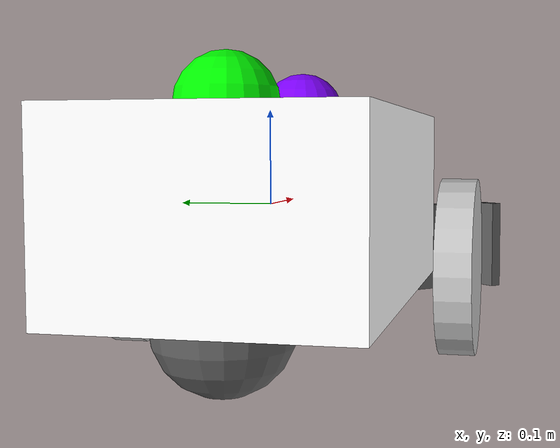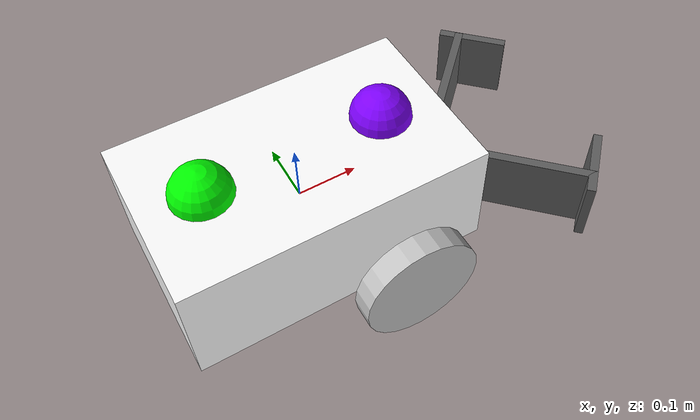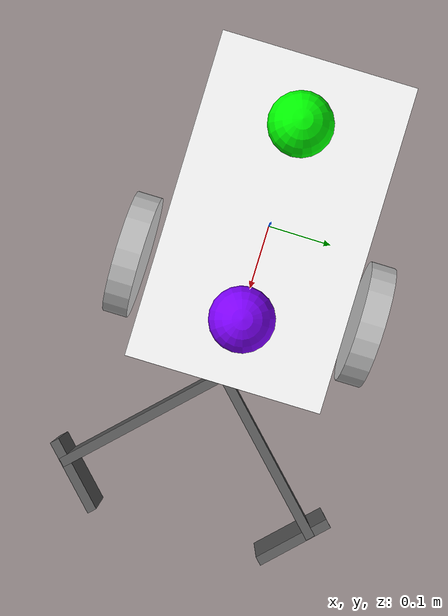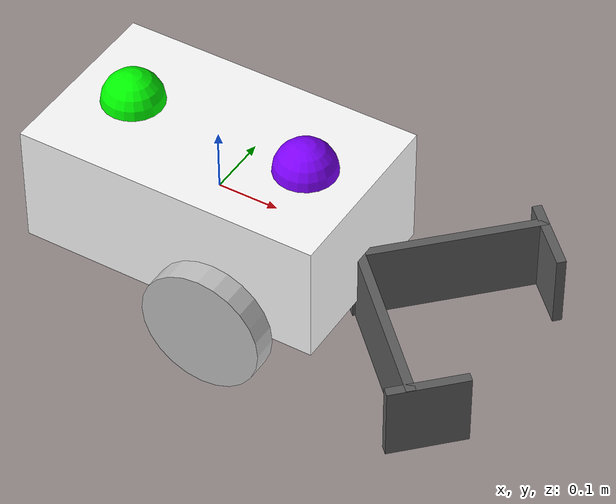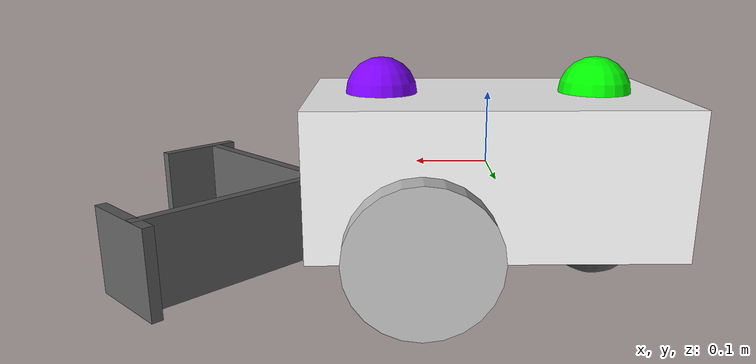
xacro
<?xml version="1.0" ?>
<robot xmlns:xacro="http://www.ros.org/wiki/xacro" name="carlos">

   <xacro:property name="body_x" value="0.5" />
   <xacro:property name="body_y" value="0.3" />
   <xacro:property name="body_z" value="0.2" />
   <xacro:property name="body_m" value="1.0" />

   <xacro:property name="wheel_len" value="0.04" />
   <xacro:property name="wheel_rad" value="0.1" />
   <xacro:property name="wheel_m" value="0.1" />

   <xacro:property name="wheel_front_rad" value="0.07" />
   <xacro:property name="wheel_front_m" value="0.2" />

   <xacro:property name="cam_rad" value="0.04" />
   <xacro:property name="cam_m" value="0.01" />

    <!-- Define intertial property macros  -->
   <xacro:macro name="box_inertia" params="m w h d">
     <inertia ixx="${(m/12) * (h*h + d*d)}" ixy="0.0" ixz="0.0"
              iyy="${(m/12) * (w*w + d*d)}" iyz="0.0" izz="${(m/12) *
(w*w + h*h)}" />
   </xacro:macro>

   <xacro:macro name="cylinder_inertia" params="m r h">
     <inertia ixx="${(m/12) * (3*r*r + h*h)}" ixy="0" ixz="0"
              iyy="${(m/12) * (3*r*r + h*h)}" iyz="0" izz="${(m/2) *
(r*r)}" />
   </xacro:macro>

   <xacro:macro name="sphere_inertia" params="m r">
     <inertia ixx="${(2/5) * m * (r*r)}" ixy="0.0" ixz="0.0"
              iyy="${(2/5) * m * (r*r)}" iyz="0.0" izz="${(2/5) * m *
(r*r)}" />
   </xacro:macro>

  <xacro:macro name="sphere_link" params="name r color mass:=0.1 inertia_ratio:=1.0 *origin">
    <link name="${name}">
        <collision>
            <xacro:insert_block name="origin"/>
            <geometry>
                <sphere radius="${r}"/>
            </geometry>
        </collision>
        <visual>
            <xacro:insert_block name="origin"/>
            <geometry>
                <sphere radius="${r}"/>
            </geometry>
            <material name="${color}"/>
        </visual>
        <inertial>
            <mass value="${mass}"/>
            <xacro:insert_block name="origin"/>
            <inertia ixx="${inertia_ratio*(2/3)*mass*r*r}" ixy="0.0" ixz="0.0"
                     iyy="${inertia_ratio*(2/3)*mass*r*r}" iyz="0.0"
                     izz="${inertia_ratio*(2/3)*mass*r*r}"/>
        </inertial>
    </link>
    <joint name="${name}_joint" type="fixed">
       <parent link="base_link"/>
       <child link="${name}"/>
       <xacro:insert_block name="origin"/>
    </joint>
  </xacro:macro>

  <xacro:macro name="gripper_link" params="name l thickness h color mass:=0.1 inertia_ratio:=1.0 *origin">
    <link name="${name}">
        <collision>
            <xacro:insert_block name="origin"/>
            <geometry>
              <box size="${l} ${thickness} ${h}"/>
            </geometry>
        </collision>
        <visual>
            <xacro:insert_block name="origin"/>
            <geometry>
              <box size="${l} ${thickness} ${h}"/>
            </geometry>
            <material name="${color}"/>
        </visual>
        <inertial>
            <mass value="${mass}"/>
            <xacro:insert_block name="origin"/>
            <inertia ixx="${mass/12} * (${l}*${l})" ixy="0.0" ixz="0.0" iyy="${mass/12} * (${thickness}*${thickness})" iyz="0.0" izz="${mass/12}*(${thickness}*${thickness} + ${h}*${h})" />
        </inertial>
    </link>
    <joint name="${name}_joint" type="fixed">
       <parent link="base_link"/>
       <child link="${name}"/>
       <xacro:insert_block name="origin"/>
    </joint>
    <gazebo reference="wheel_front">
     <material>Gazebo/DarkGray</material>
    </gazebo>
  </xacro:macro>

  <material name="blue">
   <color rgba="0 0 0.8 1"/>
  </material>

  <material name="red">
   <color rgba="0.8 0 0 1"/>
  </material>

  <material name="grey">
   <color rgba="0.36 0.36 0.36 1"/>
  </material>

  <material name="lightgrey">
   <color rgba="0.76 0.76 0.76 1"/>
  </material>

  <material name="white">
   <color rgba="1 1 1 1"/>
  </material>

  <material name="violet">
   <color rgba="${127/255} ${0/255} 1 1"/>
  </material>

  <material name="green">
   <color rgba="0 1 0 1"/>
  </material>

  <link name="base_link">
   <visual>
     <geometry>
       <box size="${body_x} ${body_y} ${body_z}"/>
     </geometry>
     <material name="white"/>
   </visual>

   <collision>
     <geometry>
       <box size="${body_x} ${body_y} ${body_z}"/>
     </geometry>
   </collision>

   <inertial>
     <origin rpy="0 0 0" xyz="0 0 0.0"/>
     <mass value="${body_m}"/>
     <xacro:box_inertia m="${body_m}" w="${body_y}" h="${body_z}"
  d="${body_x}"/>
   </inertial>
  </link>

  <gazebo reference="base_link">
   <material>Gazebo/White</material>
  </gazebo>

  <link name="wheel_right">
   <visual>
     <geometry>
       <cylinder length="${wheel_len}" radius="${wheel_rad}"/>
     </geometry>
     <material name="lightgrey"/>
   </visual>

   <collision>
     <geometry>
       <cylinder length="${wheel_len}" radius="${wheel_rad}"/>
     </geometry>
   </collision>

   <inertial>
     <mass value="${wheel_m}"/>
     <xacro:cylinder_inertia m="${wheel_m}" r="${wheel_rad}"
  h="${wheel_len}"/>
   </inertial>
  </link>

  <gazebo reference="wheel_right">
   <mu1>1.2</mu1>
   <mu2>1.2</mu2>
   <kp>500000.0</kp>
   <kd>10.0</kd>
   <minDepth>0.001</minDepth>
   <maxVel>0.1</maxVel>
   <material>Gazebo/FlatBlack</material>
  </gazebo>

  <joint name="wheel_right_joint" type="continuous">
   <parent link="base_link"/>
   <child link="wheel_right"/>
   <axis xyz="0 0 1"/>
   <origin rpy="${-pi/2} 0 0" xyz="${body_x*0.2} ${-body_y*0.65}
  ${-body_y*0.25}"/>
  </joint>

  <link name="wheel_left">
   <visual>
     <geometry>
       <cylinder length="${wheel_len}" radius="${wheel_rad}"/>
     </geometry>
     <material name="lightgrey"/>
   </visual>

   <collision>
     <geometry>
       <cylinder length="${wheel_len}" radius="${wheel_rad}"/>
     </geometry>
   </collision>

   <inertial>
     <mass value="${wheel_m}"/>
     <xacro:cylinder_inertia m="${wheel_m}" r="${wheel_rad}"
  h="${wheel_len}"/>
   </inertial>
  </link>

  <gazebo reference="wheel_left">
   <mu1>1.2</mu1>
   <mu2>1.2</mu2>
   <kp>500000.0</kp>
   <kd>10.0</kd>
   <minDepth>0.001</minDepth>
   <maxVel>0.1</maxVel>
   <material>Gazebo/FlatBlack</material>
  </gazebo>

  <joint name="wheel_left_joint" type="continuous">
   <parent link="base_link"/>
   <child link="wheel_left"/>
   <axis xyz="0 0 1"/>
   <origin rpy="${-pi/2} 0 0" xyz="${body_x*0.2} ${body_y*0.65}
  ${-body_y*0.25}"/>
  </joint>

  <link name="wheel_front">
   <visual>
     <geometry>
       <sphere radius="${wheel_front_rad}"/>
     </geometry>
     <material name="grey"/>
   </visual>
   <collision>
     <geometry>
       <sphere radius="${wheel_front_rad}"/>
     </geometry>
   </collision>
  </link>
  <joint name="wheel_front_joint" type="fixed">
   <parent link="base_link"/>
   <child link="wheel_front"/>
   <origin rpy="0 0 0" xyz="${-body_x*0.325} 0.0 ${-body_z*0.5}"/>
  </joint>

  <gazebo reference="wheel_front">
   <material>Gazebo/DarkGray</material>
   <mu1>0.2</mu1>
   <mu2>0.2</mu2>
  </gazebo>

  <!-- ______________ wheel motion plugin _______________  -->
  <gazebo>
   <plugin filename="libgazebo_ros_diff_drive.so" name="diff_drive">
     <!-- wheels -->
     <left_joint>wheel_left_joint</left_joint>
     <right_joint>wheel_right_joint</right_joint>
     <!-- kinematics -->
     <wheel_separation>${wheel_len + body_y}</wheel_separation>
     <wheel_diameter>${2*wheel_rad}</wheel_diameter>
     <!-- limits -->
     <max_wheel_torque>50</max_wheel_torque>
    <max_wheel_acceleration>5.0</max_wheel_acceleration>
     <!-- output -->
     <publish_odom>true</publish_odom>
     <publish_odom_tf>true</publish_odom_tf>
     <publish_wheel_tf>true</publish_wheel_tf>
     <robot_base_frame>base_link</robot_base_frame>
   </plugin>
  </gazebo>

   <!-- ______________ sphere orientation _______________  -->
  <xacro:sphere_link name="green_head_sphere" color="green" r="0.05" mass="0.02" inertia_ratio="0.01">
    <origin xyz="${-body_x*0.15} 0.0 ${body_z*0.25}" rpy="0 0 0"/>
  </xacro:sphere_link>
  <gazebo reference="green_head_sphere">
    <material>Gazebo/Green</material>
  </gazebo>
  <xacro:sphere_link name="violet_head_sphere" color="violet" r="0.05" mass="0.02" inertia_ratio="0.01">
    <origin xyz="${body_x*0.15} 0.0 ${body_z*0.25}" rpy="0 0 0"/>
  </xacro:sphere_link>
  <gazebo reference="violet_head_sphere">
    <material>Gazebo/Purple</material>
  </gazebo>

  <!-- ______________ adding grepper _______________  -->

  <xacro:gripper_link name="right_gripper_1" l="${body_x*0.6}" thickness="${body_y*0.05}" h="${body_z*0.6}"  color="grey" mass="0.1" inertia_ratio="0.01">
    <origin xyz="${body_x*0.36} ${-body_y*0.05} ${-body_z*0.2}" rpy="0 0 ${-pi/8}"/>
  </xacro:gripper_link>
  <xacro:gripper_link name="right_gripper_2" l="${body_x*0.25}" thickness="${body_y*0.05}" h="${body_z*0.6}"  color="grey" mass="0.02" inertia_ratio="0.01">
    <origin xyz="${body_x*0.46*cos(pi/8)} ${-body_x*0.71*sin(pi/8)} ${-body_z*0.2}" rpy="0 0 ${pi/8}"/>
  </xacro:gripper_link>
  <xacro:gripper_link name="left_gripper_1" l="${body_x*0.6}" thickness="${body_y*0.05}" h="${body_z*0.6}"  color="grey" mass="0.02" inertia_ratio="0.01">
    <origin xyz="${body_x*0.36} ${body_y*0.05} ${-body_z*0.2}" rpy="0 0 ${pi/8}"/>
  </xacro:gripper_link>
  <xacro:gripper_link name="left_gripper_2" l="${body_x*0.25}" thickness="${body_y*0.05}" h="${body_z*0.6}"  color="grey" mass="0.1" inertia_ratio="0.01">
    <origin xyz="${body_x*0.46*cos(-pi/8)} ${-body_x*0.71*sin(-pi/8)} ${-body_z*0.2}" rpy="0 0 ${-pi/8}"/>
  </xacro:gripper_link>

  <!-- ______________ adding imu _______________  -->
    <link name="imu_link">
     <visual>
       <geometry>
         <sphere radius="${0.02}"/>
       </geometry>
       <material name="grey"/>
     </visual>
   </link>

  <joint name="imu_joint" type="fixed">
   <parent link="base_link"/>
   <child link="imu_link"/>
   <origin rpy="0 0 0" xyz="${0.0} 0.0 ${0.0}"/>
  </joint>

  <gazebo reference="imu_link">
    <gravity>true</gravity>
    <sensor name="imu_sensor" type="imu">
      <always_on>true</always_on>
      <update_rate>100</update_rate>
      <visualize>true</visualize>
      <plugin filename="libgazebo_ros_imu_sensor.so" name="imu_plugin">
        <ros>
            <remapping>~/out:=imu</remapping>
          </ros>
        <topicName>imu</topicName>
        <bodyName>imu_link</bodyName>
        <updateRateHZ>10.0</updateRateHZ>
        <xyzOffset>0 0 0</xyzOffset>
        <rpyOffset>0 0 0</rpyOffset>
        <frameName>imu_link</frameName>
        <gaussianNoise>0.01</gaussianNoise>
        <initialOrientationAsReference>false</initialOrientationAsReference>
      </plugin>
      <pose>0 0 0 0 0 0</pose>
    </sensor>
  </gazebo>

</robot>
